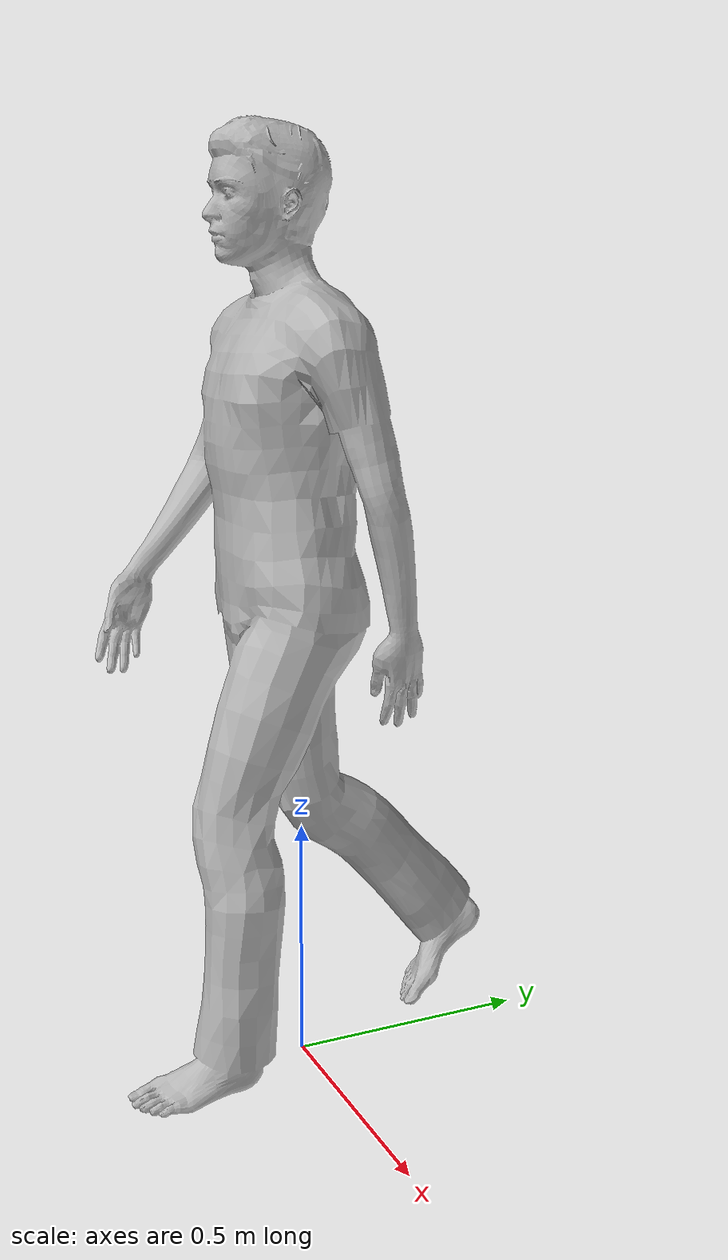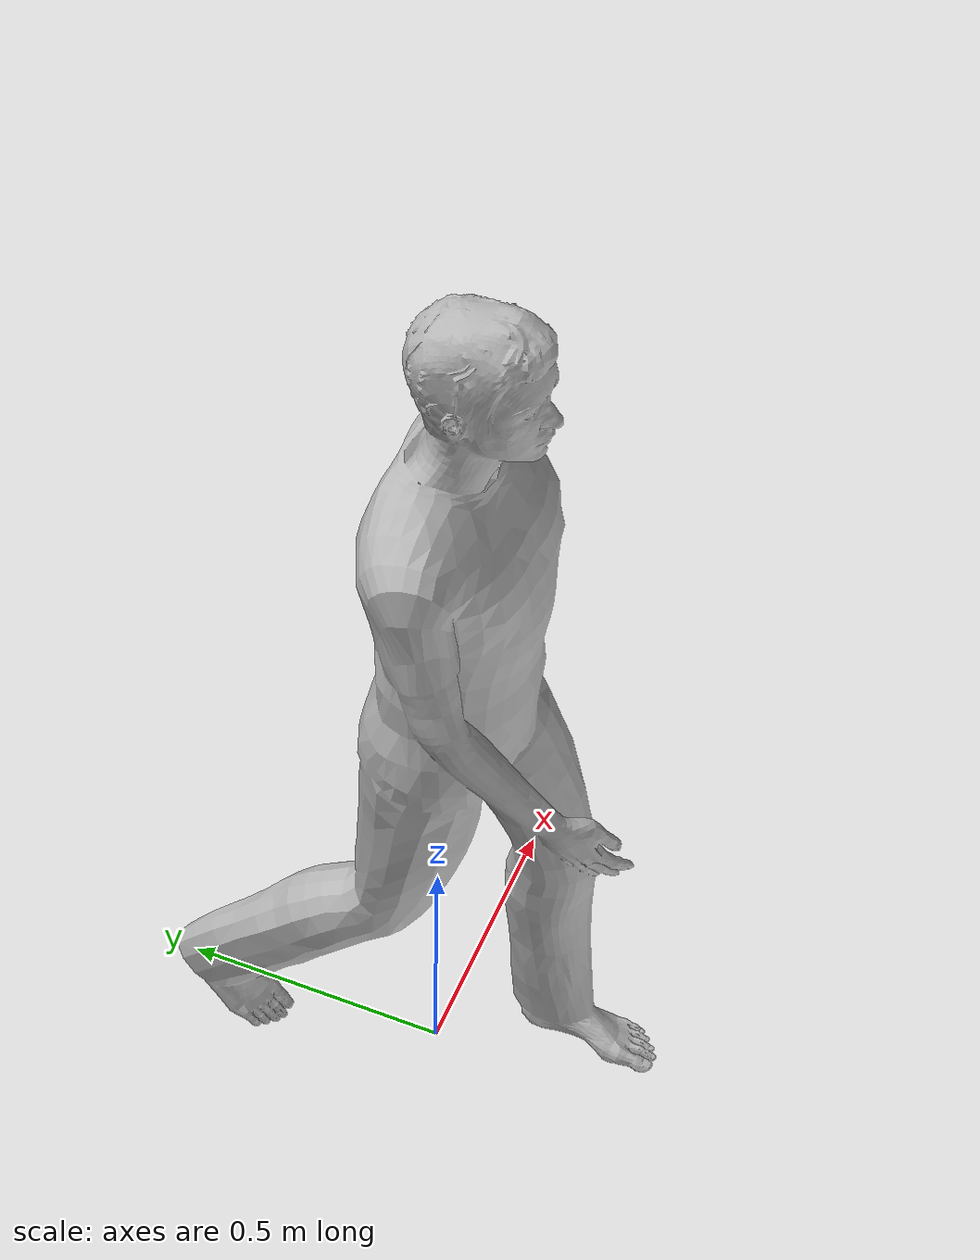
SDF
<?xml version="1.0" ?>
<sdf version="1.5">
  <model name="team_organizers_d">
    <link name="link">
      <inertial>
        <pose>0 0 0.95 0 0 0</pose>
        <mass>80.0</mass>
        <inertia>
          <ixx>27.82</ixx>
          <ixy>0</ixy>
          <ixz>0</ixz>
          <iyy>24.88</iyy>
          <iyz>0</iyz>
          <izz>4.57</izz>
        </inertia>
      </inertial>

      <collision name="bottom">
        <pose>0 0 0.01 0 0 0</pose>
        <geometry>
          <box>
            <size>0.35 0.75 0.02</size>
          </box>
        </geometry>
      </collision>

      <collision name="person">
        <pose>0 0 -0.02 0 0 0</pose>
        <geometry>
          <mesh>
            <uri>model://p_organizing_d/meshes/walking.dae</uri>
          </mesh>
        </geometry>
      </collision>

      <visual name="visual">
        <pose>0 0 -0.02 0 0 0</pose>
        <geometry>
          <mesh>
            <uri>model://p_organizing_d/meshes/walking.dae</uri>
          </mesh>
        </geometry>
      </visual>
    </link>
    <static>1</static>
    <allow_auto_disable>1</allow_auto_disable>

  </model>
</sdf>
